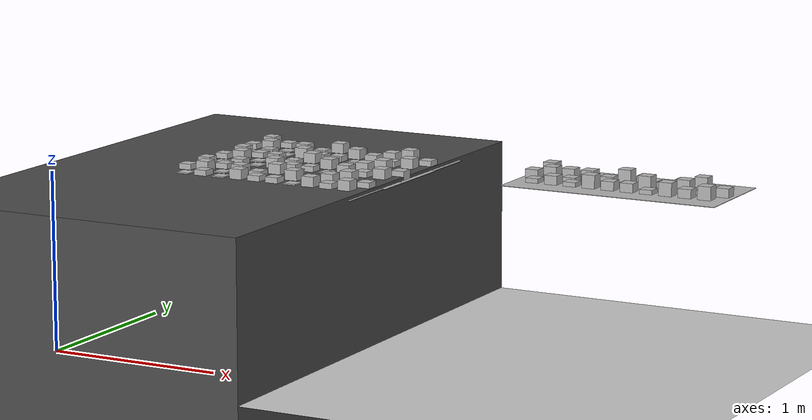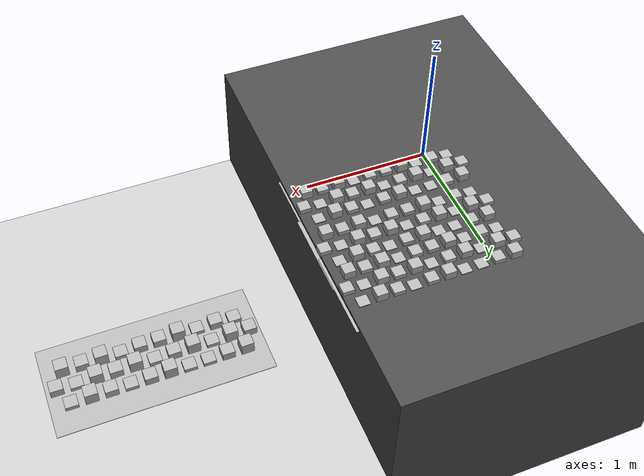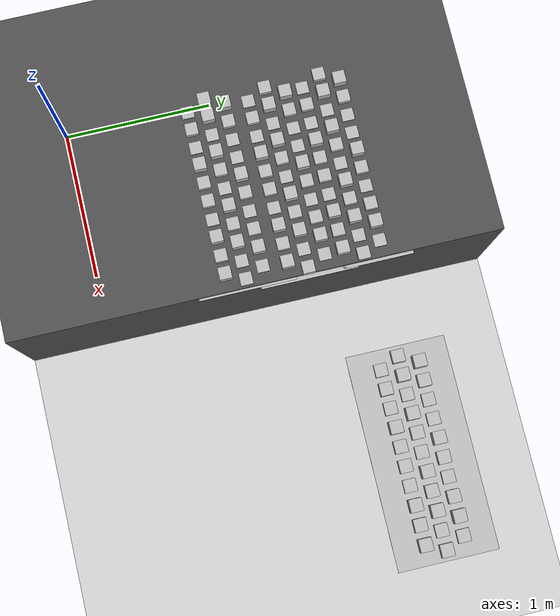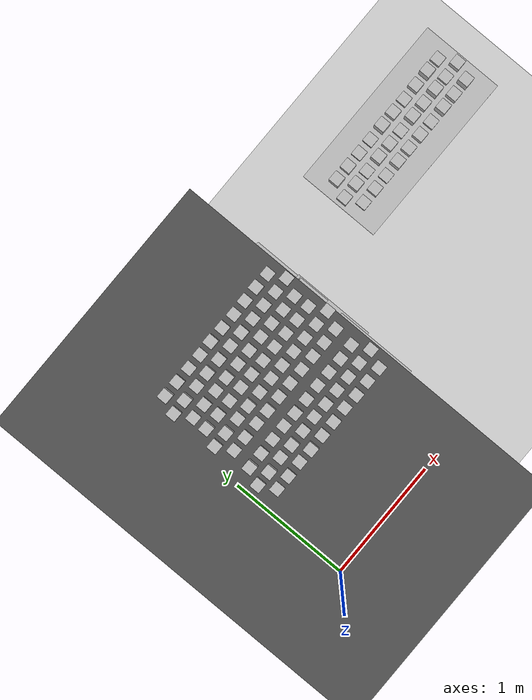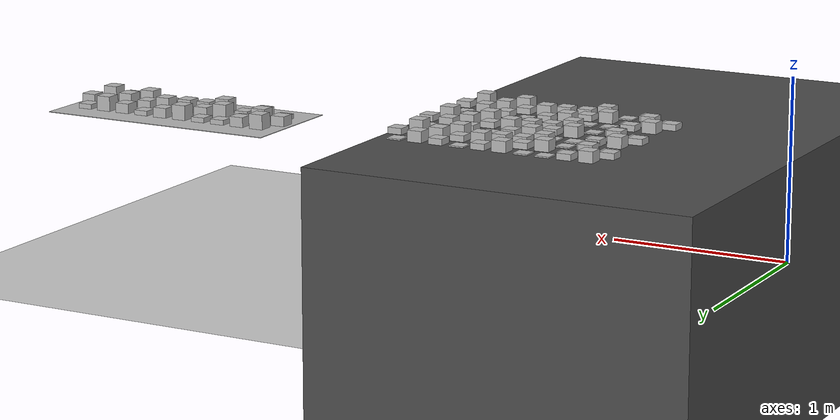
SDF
<sdf version="1.6">
 <world name="default">
  <model name="ground_plane">
   <static>1</static>
   <link name="link">
    <collision name="collision">
     <geometry><plane><normal>0 0 1</normal><size>100 100</size></plane></geometry>
     <surface><friction><ode><mu>100</mu><mu2>50</mu2></ode></friction></surface>
    </collision>
    <visual name="visual">
     <cast_shadows>0</cast_shadows>
     <geometry><plane><normal>0 0 1</normal><size>100 100</size></plane></geometry>
     <material>
      <script><uri>file://media/materials/scripts/gazebo.material</uri><name>Gazebo/Grey</name></script>
     </material>
    </visual>
   </link>
  </model>
  <model name="asphalt_plane">
   <static>1</static>
   <link name="link">
    <collision name="collision">
     <geometry><box><size>20 20 1.4296</size></box></geometry>
     <surface><friction><ode><mu>100</mu><mu2>50</mu2></ode></friction></surface>
    </collision>
    <visual name="visual">
     <cast_shadows>0</cast_shadows>
     <geometry><box><size>20 20 1.4296</size></box></geometry>
     <material>
      <script>
       <uri>model://asphalt_plane/materials/scripts</uri>
       <uri>model://asphalt_plane/materials/textures</uri>
       <name>vrc/asphalt</name>
      </script>
     </material>
    </visual>
   </link>
   <pose>-8.53833 2.29833 0.165376 0 -0 0</pose>
  </model>
  <model name="frc2016_roughterrain_1_clone_2">
   <static>0</static>
   <link name="link">
    <visual name="platform">
     <pose>0 0 0.08269 0 -0 0</pose>
     <geometry><box><size>1.27 0.5969 0.003175</size></box></geometry>
    </visual>
    <collision name="platform">
     <pose>0 0 0.08269 0 -0 0</pose>
     <geometry><box><size>1.27 0.5969 0.003175</size></box></geometry>
    </collision>
    <visual name="row1_block1_sm">
     <pose>0.51435 0.1143 0.09698 0 -0 0</pose>
     <geometry><box><size>0.0762 0.0762 0.0254</size></box></geometry>
    </visual>
    <collision name="row1_block1_sm">
     <pose>0.51435 0.1143 0.09698 0 -0 0</pose>
     <geometry><box><size>0.0762 0.0762 0.0254</size></box></geometry>
    </collision>
    <visual name="row1_block2_lg">
     <pose>0.40005 0.1143 0.12238 0 -0 0</pose>
     <geometry><box><size>0.0762 0.0762 0.0762</size></box></geometry>
    </visual>
    <collision name="row1_block2_lg">
     <pose>0.40005 0.1143 0.12238 0 -0 0</pose>
     <geometry><box><size>0.0762 0.0762 0.0762</size></box></geometry>
    </collision>
    <visual name="row1_block3_md">
     <pose>0.28575 0.1143 0.10968 0 -0 0</pose>
     <geometry><box><size>0.0762 0.0762 0.0508</size></box></geometry>
    </visual>
    <collision name="row1_block3_md">
     <pose>0.28575 0.1143 0.10968 0 -0 0</pose>
     <geometry><box><size>0.0762 0.0762 0.0508</size></box></geometry>
    </collision>
    <visual name="row1_block4_sm">
     <pose>0.17145 0.1143 0.09698 0 -0 0</pose>
     <geometry><box><size>0.0762 0.0762 0.0254</size></box></geometry>
    </visual>
    <collision name="row1_block4_sm">
     <pose>0.17145 0.1143 0.09698 0 -0 0</pose>
     <geometry><box><size>0.0762 0.0762 0.0254</size></box></geometry>
    </collision>
    <visual name="row1_block5_md">
     <pose>0.05715 0.1143 0.10968 0 -0 0</pose>
     <geometry><box><size>0.0762 0.0762 0.0508</size></box></geometry>
    </visual>
    <collision name="row1_block5_md">
     <pose>0.05715 0.1143 0.10968 0 -0 0</pose>
     <geometry><box><size>0.0762 0.0762 0.0508</size></box></geometry>
    </collision>
    <visual name="row1_block6_lg">
     <pose>-0.05715 0.1143 0.12238 0 -0 0</pose>
     <geometry><box><size>0.0762 0.0762 0.0762</size></box></geometry>
    </visual>
    <collision name="row1_block6_lg">
     <pose>-0.05715 0.1143 0.12238 0 -0 0</pose>
     <geometry><box><size>0.0762 0.0762 0.0762</size></box></geometry>
    </collision>
    <visual name="row1_block7_sm">
     <pose>-0.17145 0.1143 0.09698 0 -0 0</pose>
     <geometry><box><size>0.0762 0.0762 0.0254</size></box></geometry>
    </visual>
    <collision name="row1_block7_sm">
     <pose>-0.17145 0.1143 0.09698 0 -0 0</pose>
     <geometry><box><size>0.0762 0.0762 0.0254</size></box></geometry>
    </collision>
    <visual name="row1_block8_sm">
     <pose>-0.28575 0.1143 0.09698 0 -0 0</pose>
     <geometry><box><size>0.0762 0.0762 0.0254</size></box></geometry>
    </visual>
    <collision name="row1_block8_sm">
     <pose>-0.28575 0.1143 0.09698 0 -0 0</pose>
     <geometry><box><size>0.0762 0.0762 0.0254</size></box></geometry>
    </collision>
    <visual name="row1_block9_md">
     <pose>-0.40005 0.1143 0.10968 0 -0 0</pose>
     <geometry><box><size>0.0762 0.0762 0.0508</size></box></geometry>
    </visual>
    <collision name="row1_block9_md">
     <pose>-0.40005 0.1143 0.10968 0 -0 0</pose>
     <geometry><box><size>0.0762 0.0762 0.0508</size></box></geometry>
    </collision>
    <visual name="row1_block10_lg">
     <pose>-0.51435 0.1143 0.12238 0 -0 0</pose>
     <geometry><box><size>0.0762 0.0762 0.0762</size></box></geometry>
    </visual>
    <collision name="row1_block10_lg">
     <pose>-0.51435 0.1143 0.12238 0 -0 0</pose>
     <geometry><box><size>0.0762 0.0762 0.0762</size></box></geometry>
    </collision>
    <visual name="row2_block1_md">
     <pose>0.5715 0 0.10968 0 -0 0</pose>
     <geometry><box><size>0.0762 0.0762 0.0508</size></box></geometry>
    </visual>
    <collision name="row2_block1_md">
     <pose>0.5715 0 0.10968 0 -0 0</pose>
     <geometry><box><size>0.0762 0.0762 0.0508</size></box></geometry>
    </collision>
    <visual name="row2_block2_sm">
     <pose>0.4572 0 0.09698 0 -0 0</pose>
     <geometry><box><size>0.0762 0.0762 0.0254</size></box></geometry>
    </visual>
    <collision name="row2_block2_sm">
     <pose>0.4572 0 0.09698 0 -0 0</pose>
     <geometry><box><size>0.0762 0.0762 0.0254</size></box></geometry>
    </collision>
    <visual name="row2_block3_lg">
     <pose>0.3429 0 0.12238 0 -0 0</pose>
     <geometry><box><size>0.0762 0.0762 0.0762</size></box></geometry>
    </visual>
    <collision name="row2_block3_lg">
     <pose>0.3429 0 0.12238 0 -0 0</pose>
     <geometry><box><size>0.0762 0.0762 0.0762</size></box></geometry>
    </collision>
    <visual name="row2_block4_md">
     <pose>0.2286 0 0.10968 0 -0 0</pose>
     <geometry><box><size>0.0762 0.0762 0.0508</size></box></geometry>
    </visual>
    <collision name="row2_block4_md">
     <pose>0.2286 0 0.10968 0 -0 0</pose>
     <geometry><box><size>0.0762 0.0762 0.0508</size></box></geometry>
    </collision>
    <visual name="row2_block5_lg">
     <pose>0.1143 0 0.12238 0 -0 0</pose>
     <geometry><box><size>0.0762 0.0762 0.0762</size></box></geometry>
    </visual>
    <collision name="row2_block5_lg">
     <pose>0.1143 0 0.12238 0 -0 0</pose>
     <geometry><box><size>0.0762 0.0762 0.0762</size></box></geometry>
    </collision>
    <visual name="row2_block6_sm">
     <pose>0 0 0.09698 0 -0 0</pose>
     <geometry><box><size>0.0762 0.0762 0.0254</size></box></geometry>
    </visual>
    <collision name="row2_block6_sm">
     <pose>0 0 0.09698 0 -0 0</pose>
     <geometry><box><size>0.0762 0.0762 0.0254</size></box></geometry>
    </collision>
    <visual name="row2_block7_md">
     <pose>-0.1143 0 0.10968 0 -0 0</pose>
     <geometry><box><size>0.0762 0.0762 0.0508</size></box></geometry>
    </visual>
    <collision name="row2_block7_md">
     <pose>-0.1143 0 0.10968 0 -0 0</pose>
     <geometry><box><size>0.0762 0.0762 0.0508</size></box></geometry>
    </collision>
    <visual name="row2_block8_lg">
     <pose>-0.2286 0 0.12238 0 -0 0</pose>
     <geometry><box><size>0.0762 0.0762 0.0762</size></box></geometry>
    </visual>
    <collision name="row2_block8_lg">
     <pose>-0.2286 0 0.12238 0 -0 0</pose>
     <geometry><box><size>0.0762 0.0762 0.0762</size></box></geometry>
    </collision>
    <visual name="row2_block9_sm">
     <pose>-0.3429 0 0.09698 0 -0 0</pose>
     <geometry><box><size>0.0762 0.0762 0.0254</size></box></geometry>
    </visual>
    <collision name="row2_block9_sm">
     <pose>-0.3429 0 0.09698 0 -0 0</pose>
     <geometry><box><size>0.0762 0.0762 0.0254</size></box></geometry>
    </collision>
    <visual name="row2_block10_lg">
     <pose>-0.4572 0 0.12238 0 -0 0</pose>
     <geometry><box><size>0.0762 0.0762 0.0762</size></box></geometry>
    </visual>
    <collision name="row2_block10_lg">
     <pose>-0.4572 0 0.12238 0 -0 0</pose>
     <geometry><box><size>0.0762 0.0762 0.0762</size></box></geometry>
    </collision>
    <visual name="row2_block11_md">
     <pose>-0.5715 0 0.10968 0 -0 0</pose>
     <geometry><box><size>0.0762 0.0762 0.0508</size></box></geometry>
    </visual>
    <collision name="row2_block11_md">
     <pose>-0.5715 0 0.10968 0 -0 0</pose>
     <geometry><box><size>0.0762 0.0762 0.0508</size></box></geometry>
    </collision>
    <visual name="row3_block1_lg">
     <pose>0.51435 -0.1143 0.12238 0 -0 0</pose>
     <geometry><box><size>0.0762 0.0762 0.0762</size></box></geometry>
    </visual>
    <collision name="row3_block1_lg">
     <pose>0.51435 -0.1143 0.12238 0 -0 0</pose>
     <geometry><box><size>0.0762 0.0762 0.0762</size></box></geometry>
    </collision>
    <visual name="row3_block2_md">
     <pose>0.40005 -0.1143 0.10968 0 -0 0</pose>
     <geometry><box><size>0.0762 0.0762 0.0508</size></box></geometry>
    </visual>
    <collision name="row3_block2_md">
     <pose>0.40005 -0.1143 0.10968 0 -0 0</pose>
     <geometry><box><size>0.0762 0.0762 0.0508</size></box></geometry>
    </collision>
    <visual name="row3_block3_lg">
     <pose>0.28575 -0.1143 0.12238 0 -0 0</pose>
     <geometry><box><size>0.0762 0.0762 0.0762</size></box></geometry>
    </visual>
    <collision name="row3_block3_lg">
     <pose>0.28575 -0.1143 0.12238 0 -0 0</pose>
     <geometry><box><size>0.0762 0.0762 0.0762</size></box></geometry>
    </collision>
    <visual name="row3_block4_sm">
     <pose>0.17145 -0.1143 0.09698 0 -0 0</pose>
     <geometry><box><size>0.0762 0.0762 0.0254</size></box></geometry>
    </visual>
    <collision name="row3_block4_sm">
     <pose>0.17145 -0.1143 0.09698 0 -0 0</pose>
     <geometry><box><size>0.0762 0.0762 0.0254</size></box></geometry>
    </collision>
    <visual name="row3_block5_md">
     <pose>0.05715 -0.1143 0.10968 0 -0 0</pose>
     <geometry><box><size>0.0762 0.0762 0.0508</size></box></geometry>
    </visual>
    <collision name="row3_block5_md">
     <pose>0.05715 -0.1143 0.10968 0 -0 0</pose>
     <geometry><box><size>0.0762 0.0762 0.0508</size></box></geometry>
    </collision>
    <visual name="row3_block6_md">
     <pose>-0.05715 -0.1143 0.10968 0 -0 0</pose>
     <geometry><box><size>0.0762 0.0762 0.0508</size></box></geometry>
    </visual>
    <collision name="row3_block6_md">
     <pose>-0.05715 -0.1143 0.10968 0 -0 0</pose>
     <geometry><box><size>0.0762 0.0762 0.0508</size></box></geometry>
    </collision>
    <visual name="row3_block7_lg">
     <pose>-0.17145 -0.1143 0.12238 0 -0 0</pose>
     <geometry><box><size>0.0762 0.0762 0.0762</size></box></geometry>
    </visual>
    <collision name="row3_block7_lg">
     <pose>-0.17145 -0.1143 0.12238 0 -0 0</pose>
     <geometry><box><size>0.0762 0.0762 0.0762</size></box></geometry>
    </collision>
    <visual name="row3_block8_sm">
     <pose>-0.28575 -0.1143 0.09698 0 -0 0</pose>
     <geometry><box><size>0.0762 0.0762 0.0254</size></box></geometry>
    </visual>
    <collision name="row3_block8_sm">
     <pose>-0.28575 -0.1143 0.09698 0 -0 0</pose>
     <geometry><box><size>0.0762 0.0762 0.0254</size></box></geometry>
    </collision>
    <visual name="row3_block9_md">
     <pose>-0.40005 -0.1143 0.10968 0 -0 0</pose>
     <geometry><box><size>0.0762 0.0762 0.0508</size></box></geometry>
    </visual>
    <collision name="row3_block9_md">
     <pose>-0.40005 -0.1143 0.10968 0 -0 0</pose>
     <geometry><box><size>0.0762 0.0762 0.0508</size></box></geometry>
    </collision>
    <visual name="row3_block10_sm">
     <pose>-0.51435 -0.1143 0.09698 0 -0 0</pose>
     <geometry><box><size>0.0762 0.0762 0.0254</size></box></geometry>
    </visual>
    <collision name="row3_block10_sm">
     <pose>-0.51435 -0.1143 0.09698 0 -0 0</pose>
     <geometry><box><size>0.0762 0.0762 0.0254</size></box></geometry>
    </collision>
   </link>
   <pose>0.840762 0.950876 0.777128 0 -0 0</pose>
  </model>
  <model name="frc2016_roughterrain_1_clone_3">
   <static>0</static>
   <link name="link">
    <visual name="platform">
     <pose>0 0 0.08269 0 -0 0</pose>
     <geometry><box><size>1.27 0.5969 0.003175</size></box></geometry>
    </visual>
    <collision name="platform">
     <pose>0 0 0.08269 0 -0 0</pose>
     <geometry><box><size>1.27 0.5969 0.003175</size></box></geometry>
    </collision>
    <visual name="row1_block1_sm">
     <pose>0.51435 0.1143 0.09698 0 -0 0</pose>
     <geometry><box><size>0.0762 0.0762 0.0254</size></box></geometry>
    </visual>
    <collision name="row1_block1_sm">
     <pose>0.51435 0.1143 0.09698 0 -0 0</pose>
     <geometry><box><size>0.0762 0.0762 0.0254</size></box></geometry>
    </collision>
    <visual name="row1_block2_lg">
     <pose>0.40005 0.1143 0.12238 0 -0 0</pose>
     <geometry><box><size>0.0762 0.0762 0.0762</size></box></geometry>
    </visual>
    <collision name="row1_block2_lg">
     <pose>0.40005 0.1143 0.12238 0 -0 0</pose>
     <geometry><box><size>0.0762 0.0762 0.0762</size></box></geometry>
    </collision>
    <visual name="row1_block3_md">
     <pose>0.28575 0.1143 0.10968 0 -0 0</pose>
     <geometry><box><size>0.0762 0.0762 0.0508</size></box></geometry>
    </visual>
    <collision name="row1_block3_md">
     <pose>0.28575 0.1143 0.10968 0 -0 0</pose>
     <geometry><box><size>0.0762 0.0762 0.0508</size></box></geometry>
    </collision>
    <visual name="row1_block4_sm">
     <pose>0.17145 0.1143 0.09698 0 -0 0</pose>
     <geometry><box><size>0.0762 0.0762 0.0254</size></box></geometry>
    </visual>
    <collision name="row1_block4_sm">
     <pose>0.17145 0.1143 0.09698 0 -0 0</pose>
     <geometry><box><size>0.0762 0.0762 0.0254</size></box></geometry>
    </collision>
    <visual name="row1_block5_md">
     <pose>0.05715 0.1143 0.10968 0 -0 0</pose>
     <geometry><box><size>0.0762 0.0762 0.0508</size></box></geometry>
    </visual>
    <collision name="row1_block5_md">
     <pose>0.05715 0.1143 0.10968 0 -0 0</pose>
     <geometry><box><size>0.0762 0.0762 0.0508</size></box></geometry>
    </collision>
    <visual name="row1_block6_lg">
     <pose>-0.05715 0.1143 0.12238 0 -0 0</pose>
     <geometry><box><size>0.0762 0.0762 0.0762</size></box></geometry>
    </visual>
    <collision name="row1_block6_lg">
     <pose>-0.05715 0.1143 0.12238 0 -0 0</pose>
     <geometry><box><size>0.0762 0.0762 0.0762</size></box></geometry>
    </collision>
    <visual name="row1_block7_sm">
     <pose>-0.17145 0.1143 0.09698 0 -0 0</pose>
     <geometry><box><size>0.0762 0.0762 0.0254</size></box></geometry>
    </visual>
    <collision name="row1_block7_sm">
     <pose>-0.17145 0.1143 0.09698 0 -0 0</pose>
     <geometry><box><size>0.0762 0.0762 0.0254</size></box></geometry>
    </collision>
    <visual name="row1_block8_sm">
     <pose>-0.28575 0.1143 0.09698 0 -0 0</pose>
     <geometry><box><size>0.0762 0.0762 0.0254</size></box></geometry>
    </visual>
    <collision name="row1_block8_sm">
     <pose>-0.28575 0.1143 0.09698 0 -0 0</pose>
     <geometry><box><size>0.0762 0.0762 0.0254</size></box></geometry>
    </collision>
    <visual name="row1_block9_md">
     <pose>-0.40005 0.1143 0.10968 0 -0 0</pose>
     <geometry><box><size>0.0762 0.0762 0.0508</size></box></geometry>
    </visual>
    <collision name="row1_block9_md">
     <pose>-0.40005 0.1143 0.10968 0 -0 0</pose>
     <geometry><box><size>0.0762 0.0762 0.0508</size></box></geometry>
    </collision>
    <visual name="row1_block10_lg">
     <pose>-0.51435 0.1143 0.12238 0 -0 0</pose>
     <geometry><box><size>0.0762 0.0762 0.0762</size></box></geometry>
    </visual>
    <collision name="row1_block10_lg">
     <pose>-0.51435 0.1143 0.12238 0 -0 0</pose>
     <geometry><box><size>0.0762 0.0762 0.0762</size></box></geometry>
    </collision>
    <visual name="row2_block1_md">
     <pose>0.5715 0 0.10968 0 -0 0</pose>
     <geometry><box><size>0.0762 0.0762 0.0508</size></box></geometry>
    </visual>
    <collision name="row2_block1_md">
     <pose>0.5715 0 0.10968 0 -0 0</pose>
     <geometry><box><size>0.0762 0.0762 0.0508</size></box></geometry>
    </collision>
    <visual name="row2_block2_sm">
     <pose>0.4572 0 0.09698 0 -0 0</pose>
     <geometry><box><size>0.0762 0.0762 0.0254</size></box></geometry>
    </visual>
    <collision name="row2_block2_sm">
     <pose>0.4572 0 0.09698 0 -0 0</pose>
     <geometry><box><size>0.0762 0.0762 0.0254</size></box></geometry>
    </collision>
    <visual name="row2_block3_lg">
     <pose>0.3429 0 0.12238 0 -0 0</pose>
     <geometry><box><size>0.0762 0.0762 0.0762</size></box></geometry>
    </visual>
    <collision name="row2_block3_lg">
     <pose>0.3429 0 0.12238 0 -0 0</pose>
     <geometry><box><size>0.0762 0.0762 0.0762</size></box></geometry>
    </collision>
    <visual name="row2_block4_md">
     <pose>0.2286 0 0.10968 0 -0 0</pose>
     <geometry><box><size>0.0762 0.0762 0.0508</size></box></geometry>
    </visual>
    <collision name="row2_block4_md">
     <pose>0.2286 0 0.10968 0 -0 0</pose>
     <geometry><box><size>0.0762 0.0762 0.0508</size></box></geometry>
    </collision>
    <visual name="row2_block5_lg">
     <pose>0.1143 0 0.12238 0 -0 0</pose>
     <geometry><box><size>0.0762 0.0762 0.0762</size></box></geometry>
    </visual>
    <collision name="row2_block5_lg">
     <pose>0.1143 0 0.12238 0 -0 0</pose>
     <geometry><box><size>0.0762 0.0762 0.0762</size></box></geometry>
    </collision>
    <visual name="row2_block6_sm">
     <pose>0 0 0.09698 0 -0 0</pose>
     <geometry><box><size>0.0762 0.0762 0.0254</size></box></geometry>
    </visual>
    <collision name="row2_block6_sm">
     <pose>0 0 0.09698 0 -0 0</pose>
     <geometry><box><size>0.0762 0.0762 0.0254</size></box></geometry>
    </collision>
    <visual name="row2_block7_md">
     <pose>-0.1143 0 0.10968 0 -0 0</pose>
     <geometry><box><size>0.0762 0.0762 0.0508</size></box></geometry>
    </visual>
    <collision name="row2_block7_md">
     <pose>-0.1143 0 0.10968 0 -0 0</pose>
     <geometry><box><size>0.0762 0.0762 0.0508</size></box></geometry>
    </collision>
    <visual name="row2_block8_lg">
     <pose>-0.2286 0 0.12238 0 -0 0</pose>
     <geometry><box><size>0.0762 0.0762 0.0762</size></box></geometry>
    </visual>
    <collision name="row2_block8_lg">
     <pose>-0.2286 0 0.12238 0 -0 0</pose>
     <geometry><box><size>0.0762 0.0762 0.0762</size></box></geometry>
    </collision>
    <visual name="row2_block9_sm">
     <pose>-0.3429 0 0.09698 0 -0 0</pose>
     <geometry><box><size>0.0762 0.0762 0.0254</size></box></geometry>
    </visual>
    <collision name="row2_block9_sm">
     <pose>-0.3429 0 0.09698 0 -0 0</pose>
     <geometry><box><size>0.0762 0.0762 0.0254</size></box></geometry>
    </collision>
    <visual name="row2_block10_lg">
     <pose>-0.4572 0 0.12238 0 -0 0</pose>
     <geometry><box><size>0.0762 0.0762 0.0762</size></box></geometry>
    </visual>
    <collision name="row2_block10_lg">
     <pose>-0.4572 0 0.12238 0 -0 0</pose>
     <geometry><box><size>0.0762 0.0762 0.0762</size></box></geometry>
    </collision>
    <visual name="row2_block11_md">
     <pose>-0.5715 0 0.10968 0 -0 0</pose>
     <geometry><box><size>0.0762 0.0762 0.0508</size></box></geometry>
    </visual>
    <collision name="row2_block11_md">
     <pose>-0.5715 0 0.10968 0 -0 0</pose>
     <geometry><box><size>0.0762 0.0762 0.0508</size></box></geometry>
    </collision>
    <visual name="row3_block1_lg">
     <pose>0.51435 -0.1143 0.12238 0 -0 0</pose>
     <geometry><box><size>0.0762 0.0762 0.0762</size></box></geometry>
    </visual>
    <collision name="row3_block1_lg">
     <pose>0.51435 -0.1143 0.12238 0 -0 0</pose>
     <geometry><box><size>0.0762 0.0762 0.0762</size></box></geometry>
    </collision>
    <visual name="row3_block2_md">
     <pose>0.40005 -0.1143 0.10968 0 -0 0</pose>
     <geometry><box><size>0.0762 0.0762 0.0508</size></box></geometry>
    </visual>
    <collision name="row3_block2_md">
     <pose>0.40005 -0.1143 0.10968 0 -0 0</pose>
     <geometry><box><size>0.0762 0.0762 0.0508</size></box></geometry>
    </collision>
    <visual name="row3_block3_lg">
     <pose>0.28575 -0.1143 0.12238 0 -0 0</pose>
     <geometry><box><size>0.0762 0.0762 0.0762</size></box></geometry>
    </visual>
    <collision name="row3_block3_lg">
     <pose>0.28575 -0.1143 0.12238 0 -0 0</pose>
     <geometry><box><size>0.0762 0.0762 0.0762</size></box></geometry>
    </collision>
    <visual name="row3_block4_sm">
     <pose>0.17145 -0.1143 0.09698 0 -0 0</pose>
     <geometry><box><size>0.0762 0.0762 0.0254</size></box></geometry>
    </visual>
    <collision name="row3_block4_sm">
     <pose>0.17145 -0.1143 0.09698 0 -0 0</pose>
     <geometry><box><size>0.0762 0.0762 0.0254</size></box></geometry>
    </collision>
    <visual name="row3_block5_md">
     <pose>0.05715 -0.1143 0.10968 0 -0 0</pose>
     <geometry><box><size>0.0762 0.0762 0.0508</size></box></geometry>
    </visual>
    <collision name="row3_block5_md">
     <pose>0.05715 -0.1143 0.10968 0 -0 0</pose>
     <geometry><box><size>0.0762 0.0762 0.0508</size></box></geometry>
    </collision>
    <visual name="row3_block6_md">
     <pose>-0.05715 -0.1143 0.10968 0 -0 0</pose>
     <geometry><box><size>0.0762 0.0762 0.0508</size></box></geometry>
    </visual>
    <collision name="row3_block6_md">
     <pose>-0.05715 -0.1143 0.10968 0 -0 0</pose>
     <geometry><box><size>0.0762 0.0762 0.0508</size></box></geometry>
    </collision>
    <visual name="row3_block7_lg">
     <pose>-0.17145 -0.1143 0.12238 0 -0 0</pose>
     <geometry><box><size>0.0762 0.0762 0.0762</size></box></geometry>
    </visual>
    <collision name="row3_block7_lg">
     <pose>-0.17145 -0.1143 0.12238 0 -0 0</pose>
     <geometry><box><size>0.0762 0.0762 0.0762</size></box></geometry>
    </collision>
    <visual name="row3_block8_sm">
     <pose>-0.28575 -0.1143 0.09698 0 -0 0</pose>
     <geometry><box><size>0.0762 0.0762 0.0254</size></box></geometry>
    </visual>
    <collision name="row3_block8_sm">
     <pose>-0.28575 -0.1143 0.09698 0 -0 0</pose>
     <geometry><box><size>0.0762 0.0762 0.0254</size></box></geometry>
    </collision>
    <visual name="row3_block9_md">
     <pose>-0.40005 -0.1143 0.10968 0 -0 0</pose>
     <geometry><box><size>0.0762 0.0762 0.0508</size></box></geometry>
    </visual>
    <collision name="row3_block9_md">
     <pose>-0.40005 -0.1143 0.10968 0 -0 0</pose>
     <geometry><box><size>0.0762 0.0762 0.0508</size></box></geometry>
    </collision>
    <visual name="row3_block10_sm">
     <pose>-0.51435 -0.1143 0.09698 0 -0 0</pose>
     <geometry><box><size>0.0762 0.0762 0.0254</size></box></geometry>
    </visual>
    <collision name="row3_block10_sm">
     <pose>-0.51435 -0.1143 0.09698 0 -0 0</pose>
     <geometry><box><size>0.0762 0.0762 0.0254</size></box></geometry>
    </collision>
   </link>
   <pose>0.854046 1.3265 0.777128 0 -0 0</pose>
  </model>
  <model name="frc2016_roughterrain_1_clone_11_clone_1">
   <static>0</static>
   <link name="link">
    <visual name="platform">
     <pose>0 0 0.08269 0 -0 0</pose>
     <geometry><box><size>1.27 0.5969 0.003175</size></box></geometry>
    </visual>
    <collision name="platform">
     <pose>0 0 0.08269 0 -0 0</pose>
     <geometry><box><size>1.27 0.5969 0.003175</size></box></geometry>
    </collision>
    <visual name="row1_block1_sm">
     <pose>0.51435 0.1143 0.09698 0 -0 0</pose>
     <geometry><box><size>0.0762 0.0762 0.0254</size></box></geometry>
    </visual>
    <collision name="row1_block1_sm">
     <pose>0.51435 0.1143 0.09698 0 -0 0</pose>
     <geometry><box><size>0.0762 0.0762 0.0254</size></box></geometry>
    </collision>
    <visual name="row1_block2_lg">
     <pose>0.40005 0.1143 0.12238 0 -0 0</pose>
     <geometry><box><size>0.0762 0.0762 0.0762</size></box></geometry>
    </visual>
    <collision name="row1_block2_lg">
     <pose>0.40005 0.1143 0.12238 0 -0 0</pose>
     <geometry><box><size>0.0762 0.0762 0.0762</size></box></geometry>
    </collision>
    <visual name="row1_block3_md">
     <pose>0.28575 0.1143 0.10968 0 -0 0</pose>
     <geometry><box><size>0.0762 0.0762 0.0508</size></box></geometry>
    </visual>
    <collision name="row1_block3_md">
     <pose>0.28575 0.1143 0.10968 0 -0 0</pose>
     <geometry><box><size>0.0762 0.0762 0.0508</size></box></geometry>
    </collision>
    <visual name="row1_block4_sm">
     <pose>0.17145 0.1143 0.09698 0 -0 0</pose>
     <geometry><box><size>0.0762 0.0762 0.0254</size></box></geometry>
    </visual>
    <collision name="row1_block4_sm">
     <pose>0.17145 0.1143 0.09698 0 -0 0</pose>
     <geometry><box><size>0.0762 0.0762 0.0254</size></box></geometry>
    </collision>
    <visual name="row1_block5_md">
     <pose>0.05715 0.1143 0.10968 0 -0 0</pose>
     <geometry><box><size>0.0762 0.0762 0.0508</size></box></geometry>
    </visual>
    <collision name="row1_block5_md">
     <pose>0.05715 0.1143 0.10968 0 -0 0</pose>
     <geometry><box><size>0.0762 0.0762 0.0508</size></box></geometry>
    </collision>
    <visual name="row1_block6_lg">
     <pose>-0.05715 0.1143 0.12238 0 -0 0</pose>
     <geometry><box><size>0.0762 0.0762 0.0762</size></box></geometry>
    </visual>
    <collision name="row1_block6_lg">
     <pose>-0.05715 0.1143 0.12238 0 -0 0</pose>
     <geometry><box><size>0.0762 0.0762 0.0762</size></box></geometry>
    </collision>
    <visual name="row1_block7_sm">
     <pose>-0.17145 0.1143 0.09698 0 -0 0</pose>
     <geometry><box><size>0.0762 0.0762 0.0254</size></box></geometry>
    </visual>
    <collision name="row1_block7_sm">
     <pose>-0.17145 0.1143 0.09698 0 -0 0</pose>
     <geometry><box><size>0.0762 0.0762 0.0254</size></box></geometry>
    </collision>
    <visual name="row1_block8_sm">
     <pose>-0.28575 0.1143 0.09698 0 -0 0</pose>
     <geometry><box><size>0.0762 0.0762 0.0254</size></box></geometry>
    </visual>
    <collision name="row1_block8_sm">
     <pose>-0.28575 0.1143 0.09698 0 -0 0</pose>
     <geometry><box><size>0.0762 0.0762 0.0254</size></box></geometry>
    </collision>
    <visual name="row1_block9_md">
     <pose>-0.40005 0.1143 0.10968 0 -0 0</pose>
     <geometry><box><size>0.0762 0.0762 0.0508</size></box></geometry>
    </visual>
    <collision name="row1_block9_md">
     <pose>-0.40005 0.1143 0.10968 0 -0 0</pose>
     <geometry><box><size>0.0762 0.0762 0.0508</size></box></geometry>
    </collision>
    <visual name="row1_block10_lg">
     <pose>-0.51435 0.1143 0.12238 0 -0 0</pose>
     <geometry><box><size>0.0762 0.0762 0.0762</size></box></geometry>
    </visual>
    <collision name="row1_block10_lg">
     <pose>-0.51435 0.1143 0.12238 0 -0 0</pose>
     <geometry><box><size>0.0762 0.0762 0.0762</size></box></geometry>
    </collision>
    <visual name="row2_block1_md">
     <pose>0.5715 0 0.10968 0 -0 0</pose>
     <geometry><box><size>0.0762 0.0762 0.0508</size></box></geometry>
    </visual>
    <collision name="row2_block1_md">
     <pose>0.5715 0 0.10968 0 -0 0</pose>
     <geometry><box><size>0.0762 0.0762 0.0508</size></box></geometry>
    </collision>
    <visual name="row2_block2_sm">
     <pose>0.4572 0 0.09698 0 -0 0</pose>
     <geometry><box><size>0.0762 0.0762 0.0254</size></box></geometry>
    </visual>
    <collision name="row2_block2_sm">
     <pose>0.4572 0 0.09698 0 -0 0</pose>
     <geometry><box><size>0.0762 0.0762 0.0254</size></box></geometry>
    </collision>
    <visual name="row2_block3_lg">
     <pose>0.3429 0 0.12238 0 -0 0</pose>
     <geometry><box><size>0.0762 0.0762 0.0762</size></box></geometry>
    </visual>
    <collision name="row2_block3_lg">
     <pose>0.3429 0 0.12238 0 -0 0</pose>
     <geometry><box><size>0.0762 0.0762 0.0762</size></box></geometry>
    </collision>
    <visual name="row2_block4_md">
     <pose>0.2286 0 0.10968 0 -0 0</pose>
     <geometry><box><size>0.0762 0.0762 0.0508</size></box></geometry>
    </visual>
    <collision name="row2_block4_md">
     <pose>0.2286 0 0.10968 0 -0 0</pose>
     <geometry><box><size>0.0762 0.0762 0.0508</size></box></geometry>
    </collision>
    <visual name="row2_block5_lg">
     <pose>0.1143 0 0.12238 0 -0 0</pose>
     <geometry><box><size>0.0762 0.0762 0.0762</size></box></geometry>
    </visual>
    <collision name="row2_block5_lg">
     <pose>0.1143 0 0.12238 0 -0 0</pose>
     <geometry><box><size>0.0762 0.0762 0.0762</size></box></geometry>
    </collision>
    <visual name="row2_block6_sm">
     <pose>0 0 0.09698 0 -0 0</pose>
     <geometry><box><size>0.0762 0.0762 0.0254</size></box></geometry>
    </visual>
    <collision name="row2_block6_sm">
     <pose>0 0 0.09698 0 -0 0</pose>
     <geometry><box><size>0.0762 0.0762 0.0254</size></box></geometry>
    </collision>
    <visual name="row2_block7_md">
     <pose>-0.1143 0 0.10968 0 -0 0</pose>
     <geometry><box><size>0.0762 0.0762 0.0508</size></box></geometry>
    </visual>
    <collision name="row2_block7_md">
     <pose>-0.1143 0 0.10968 0 -0 0</pose>
     <geometry><box><size>0.0762 0.0762 0.0508</size></box></geometry>
    </collision>
    <visual name="row2_block8_lg">
     <pose>-0.2286 0 0.12238 0 -0 0</pose>
     <geometry><box><size>0.0762 0.0762 0.0762</size></box></geometry>
    </visual>
    <collision name="row2_block8_lg">
     <pose>-0.2286 0 0.12238 0 -0 0</pose>
     <geometry><box><size>0.0762 0.0762 0.0762</size></box></geometry>
    </collision>
    <visual name="row2_block9_sm">
     <pose>-0.3429 0 0.09698 0 -0 0</pose>
     <geometry><box><size>0.0762 0.0762 0.0254</size></box></geometry>
    </visual>
    <collision name="row2_block9_sm">
     <pose>-0.3429 0 0.09698 0 -0 0</pose>
     <geometry><box><size>0.0762 0.0762 0.0254</size></box></geometry>
    </collision>
    <visual name="row2_block10_lg">
     <pose>-0.4572 0 0.12238 0 -0 0</pose>
     <geometry><box><size>0.0762 0.0762 0.0762</size></box></geometry>
    </visual>
    <collision name="row2_block10_lg">
     <pose>-0.4572 0 0.12238 0 -0 0</pose>
     <geometry><box><size>0.0762 0.0762 0.0762</size></box></geometry>
    </collision>
    <visual name="row2_block11_md">
     <pose>-0.5715 0 0.10968 0 -0 0</pose>
     <geometry><box><size>0.0762 0.0762 0.0508</size></box></geometry>
    </visual>
    <collision name="row2_block11_md">
     <pose>-0.5715 0 0.10968 0 -0 0</pose>
     <geometry><box><size>0.0762 0.0762 0.0508</size></box></geometry>
    </collision>
    <visual name="row3_block1_lg">
     <pose>0.51435 -0.1143 0.12238 0 -0 0</pose>
     <geometry><box><size>0.0762 0.0762 0.0762</size></box></geometry>
    </visual>
    <collision name="row3_block1_lg">
     <pose>0.51435 -0.1143 0.12238 0 -0 0</pose>
     <geometry><box><size>0.0762 0.0762 0.0762</size></box></geometry>
    </collision>
    <visual name="row3_block2_md">
     <pose>0.40005 -0.1143 0.10968 0 -0 0</pose>
     <geometry><box><size>0.0762 0.0762 0.0508</size></box></geometry>
    </visual>
    <collision name="row3_block2_md">
     <pose>0.40005 -0.1143 0.10968 0 -0 0</pose>
     <geometry><box><size>0.0762 0.0762 0.0508</size></box></geometry>
    </collision>
    <visual name="row3_block3_lg">
     <pose>0.28575 -0.1143 0.12238 0 -0 0</pose>
     <geometry><box><size>0.0762 0.0762 0.0762</size></box></geometry>
    </visual>
    <collision name="row3_block3_lg">
     <pose>0.28575 -0.1143 0.12238 0 -0 0</pose>
     <geometry><box><size>0.0762 0.0762 0.0762</size></box></geometry>
    </collision>
    <visual name="row3_block4_sm">
     <pose>0.17145 -0.1143 0.09698 0 -0 0</pose>
     <geometry><box><size>0.0762 0.0762 0.0254</size></box></geometry>
    </visual>
    <collision name="row3_block4_sm">
     <pose>0.17145 -0.1143 0.09698 0 -0 0</pose>
     <geometry><box><size>0.0762 0.0762 0.0254</size></box></geometry>
    </collision>
    <visual name="row3_block5_md">
     <pose>0.05715 -0.1143 0.10968 0 -0 0</pose>
     <geometry><box><size>0.0762 0.0762 0.0508</size></box></geometry>
    </visual>
    <collision name="row3_block5_md">
     <pose>0.05715 -0.1143 0.10968 0 -0 0</pose>
     <geometry><box><size>0.0762 0.0762 0.0508</size></box></geometry>
    </collision>
    <visual name="row3_block6_md">
     <pose>-0.05715 -0.1143 0.10968 0 -0 0</pose>
     <geometry><box><size>0.0762 0.0762 0.0508</size></box></geometry>
    </visual>
    <collision name="row3_block6_md">
     <pose>-0.05715 -0.1143 0.10968 0 -0 0</pose>
     <geometry><box><size>0.0762 0.0762 0.0508</size></box></geometry>
    </collision>
    <visual name="row3_block7_lg">
     <pose>-0.17145 -0.1143 0.12238 0 -0 0</pose>
     <geometry><box><size>0.0762 0.0762 0.0762</size></box></geometry>
    </visual>
    <collision name="row3_block7_lg">
     <pose>-0.17145 -0.1143 0.12238 0 -0 0</pose>
     <geometry><box><size>0.0762 0.0762 0.0762</size></box></geometry>
    </collision>
    <visual name="row3_block8_sm">
     <pose>-0.28575 -0.1143 0.09698 0 -0 0</pose>
     <geometry><box><size>0.0762 0.0762 0.0254</size></box></geometry>
    </visual>
    <collision name="row3_block8_sm">
     <pose>-0.28575 -0.1143 0.09698 0 -0 0</pose>
     <geometry><box><size>0.0762 0.0762 0.0254</size></box></geometry>
    </collision>
    <visual name="row3_block9_md">
     <pose>-0.40005 -0.1143 0.10968 0 -0 0</pose>
     <geometry><box><size>0.0762 0.0762 0.0508</size></box></geometry>
    </visual>
    <collision name="row3_block9_md">
     <pose>-0.40005 -0.1143 0.10968 0 -0 0</pose>
     <geometry><box><size>0.0762 0.0762 0.0508</size></box></geometry>
    </collision>
    <visual name="row3_block10_sm">
     <pose>-0.51435 -0.1143 0.09698 0 -0 0</pose>
     <geometry><box><size>0.0762 0.0762 0.0254</size></box></geometry>
    </visual>
    <collision name="row3_block10_sm">
     <pose>-0.51435 -0.1143 0.09698 0 -0 0</pose>
     <geometry><box><size>0.0762 0.0762 0.0254</size></box></geometry>
    </collision>
   </link>
   <pose>0.846446 1.66634 0.777128 0 -0 0</pose>
  </model>
  <model name="frc2016_roughterrain_1_clone_11_clone_4">
   <static>0</static>
   <link name="link">
    <visual name="platform">
     <pose>0 0 0.08269 0 -0 0</pose>
     <geometry><box><size>1.27 0.5969 0.003175</size></box></geometry>
    </visual>
    <collision name="platform">
     <pose>0 0 0.08269 0 -0 0</pose>
     <geometry><box><size>1.27 0.5969 0.003175</size></box></geometry>
    </collision>
    <visual name="row1_block1_sm">
     <pose>0.51435 0.1143 0.09698 0 -0 0</pose>
     <geometry><box><size>0.0762 0.0762 0.0254</size></box></geometry>
    </visual>
    <collision name="row1_block1_sm">
     <pose>0.51435 0.1143 0.09698 0 -0 0</pose>
     <geometry><box><size>0.0762 0.0762 0.0254</size></box></geometry>
    </collision>
    <visual name="row1_block2_lg">
     <pose>0.40005 0.1143 0.12238 0 -0 0</pose>
     <geometry><box><size>0.0762 0.0762 0.0762</size></box></geometry>
    </visual>
    <collision name="row1_block2_lg">
     <pose>0.40005 0.1143 0.12238 0 -0 0</pose>
     <geometry><box><size>0.0762 0.0762 0.0762</size></box></geometry>
    </collision>
    <visual name="row1_block3_md">
     <pose>0.28575 0.1143 0.10968 0 -0 0</pose>
     <geometry><box><size>0.0762 0.0762 0.0508</size></box></geometry>
    </visual>
    <collision name="row1_block3_md">
     <pose>0.28575 0.1143 0.10968 0 -0 0</pose>
     <geometry><box><size>0.0762 0.0762 0.0508</size></box></geometry>
    </collision>
    <visual name="row1_block4_sm">
     <pose>0.17145 0.1143 0.09698 0 -0 0</pose>
     <geometry><box><size>0.0762 0.0762 0.0254</size></box></geometry>
    </visual>
    <collision name="row1_block4_sm">
     <pose>0.17145 0.1143 0.09698 0 -0 0</pose>
     <geometry><box><size>0.0762 0.0762 0.0254</size></box></geometry>
    </collision>
    <visual name="row1_block5_md">
     <pose>0.05715 0.1143 0.10968 0 -0 0</pose>
     <geometry><box><size>0.0762 0.0762 0.0508</size></box></geometry>
    </visual>
    <collision name="row1_block5_md">
     <pose>0.05715 0.1143 0.10968 0 -0 0</pose>
     <geometry><box><size>0.0762 0.0762 0.0508</size></box></geometry>
    </collision>
    <visual name="row1_block6_lg">
     <pose>-0.05715 0.1143 0.12238 0 -0 0</pose>
     <geometry><box><size>0.0762 0.0762 0.0762</size></box></geometry>
    </visual>
    <collision name="row1_block6_lg">
     <pose>-0.05715 0.1143 0.12238 0 -0 0</pose>
     <geometry><box><size>0.0762 0.0762 0.0762</size></box></geometry>
    </collision>
    <visual name="row1_block7_sm">
     <pose>-0.17145 0.1143 0.09698 0 -0 0</pose>
     <geometry><box><size>0.0762 0.0762 0.0254</size></box></geometry>
    </visual>
    <collision name="row1_block7_sm">
     <pose>-0.17145 0.1143 0.09698 0 -0 0</pose>
     <geometry><box><size>0.0762 0.0762 0.0254</size></box></geometry>
    </collision>
    <visual name="row1_block8_sm">
     <pose>-0.28575 0.1143 0.09698 0 -0 0</pose>
     <geometry><box><size>0.0762 0.0762 0.0254</size></box></geometry>
    </visual>
    <collision name="row1_block8_sm">
     <pose>-0.28575 0.1143 0.09698 0 -0 0</pose>
     <geometry><box><size>0.0762 0.0762 0.0254</size></box></geometry>
    </collision>
    <visual name="row1_block9_md">
     <pose>-0.40005 0.1143 0.10968 0 -0 0</pose>
     <geometry><box><size>0.0762 0.0762 0.0508</size></box></geometry>
    </visual>
    <collision name="row1_block9_md">
     <pose>-0.40005 0.1143 0.10968 0 -0 0</pose>
     <geometry><box><size>0.0762 0.0762 0.0508</size></box></geometry>
    </collision>
    <visual name="row1_block10_lg">
     <pose>-0.51435 0.1143 0.12238 0 -0 0</pose>
     <geometry><box><size>0.0762 0.0762 0.0762</size></box></geometry>
    </visual>
    <collision name="row1_block10_lg">
     <pose>-0.51435 0.1143 0.12238 0 -0 0</pose>
     <geometry><box><size>0.0762 0.0762 0.0762</size></box></geometry>
    </collision>
    <visual name="row2_block1_md">
     <pose>0.5715 0 0.10968 0 -0 0</pose>
     <geometry><box><size>0.0762 0.0762 0.0508</size></box></geometry>
    </visual>
    <collision name="row2_block1_md">
     <pose>0.5715 0 0.10968 0 -0 0</pose>
     <geometry><box><size>0.0762 0.0762 0.0508</size></box></geometry>
    </collision>
    <visual name="row2_block2_sm">
     <pose>0.4572 0 0.09698 0 -0 0</pose>
     <geometry><box><size>0.0762 0.0762 0.0254</size></box></geometry>
    </visual>
    <collision name="row2_block2_sm">
     <pose>0.4572 0 0.09698 0 -0 0</pose>
     <geometry><box><size>0.0762 0.0762 0.0254</size></box></geometry>
    </collision>
    <visual name="row2_block3_lg">
     <pose>0.3429 0 0.12238 0 -0 0</pose>
     <geometry><box><size>0.0762 0.0762 0.0762</size></box></geometry>
    </visual>
    <collision name="row2_block3_lg">
     <pose>0.3429 0 0.12238 0 -0 0</pose>
     <geometry><box><size>0.0762 0.0762 0.0762</size></box></geometry>
    </collision>
    <visual name="row2_block4_md">
     <pose>0.2286 0 0.10968 0 -0 0</pose>
     <geometry><box><size>0.0762 0.0762 0.0508</size></box></geometry>
    </visual>
    <collision name="row2_block4_md">
     <pose>0.2286 0 0.10968 0 -0 0</pose>
     <geometry><box><size>0.0762 0.0762 0.0508</size></box></geometry>
    </collision>
    <visual name="row2_block5_lg">
     <pose>0.1143 0 0.12238 0 -0 0</pose>
     <geometry><box><size>0.0762 0.0762 0.0762</size></box></geometry>
    </visual>
    <collision name="row2_block5_lg">
     <pose>0.1143 0 0.12238 0 -0 0</pose>
     <geometry><box><size>0.0762 0.0762 0.0762</size></box></geometry>
    </collision>
    <visual name="row2_block6_sm">
     <pose>0 0 0.09698 0 -0 0</pose>
     <geometry><box><size>0.0762 0.0762 0.0254</size></box></geometry>
    </visual>
    <collision name="row2_block6_sm">
     <pose>0 0 0.09698 0 -0 0</pose>
     <geometry><box><size>0.0762 0.0762 0.0254</size></box></geometry>
    </collision>
    <visual name="row2_block7_md">
     <pose>-0.1143 0 0.10968 0 -0 0</pose>
     <geometry><box><size>0.0762 0.0762 0.0508</size></box></geometry>
    </visual>
    <collision name="row2_block7_md">
     <pose>-0.1143 0 0.10968 0 -0 0</pose>
     <geometry><box><size>0.0762 0.0762 0.0508</size></box></geometry>
    </collision>
    <visual name="row2_block8_lg">
     <pose>-0.2286 0 0.12238 0 -0 0</pose>
     <geometry><box><size>0.0762 0.0762 0.0762</size></box></geometry>
    </visual>
    <collision name="row2_block8_lg">
     <pose>-0.2286 0 0.12238 0 -0 0</pose>
     <geometry><box><size>0.0762 0.0762 0.0762</size></box></geometry>
    </collision>
    <visual name="row2_block9_sm">
     <pose>-0.3429 0 0.09698 0 -0 0</pose>
     <geometry><box><size>0.0762 0.0762 0.0254</size></box></geometry>
    </visual>
    <collision name="row2_block9_sm">
     <pose>-0.3429 0 0.09698 0 -0 0</pose>
     <geometry><box><size>0.0762 0.0762 0.0254</size></box></geometry>
    </collision>
    <visual name="row2_block10_lg">
     <pose>-0.4572 0 0.12238 0 -0 0</pose>
     <geometry><box><size>0.0762 0.0762 0.0762</size></box></geometry>
    </visual>
    <collision name="row2_block10_lg">
     <pose>-0.4572 0 0.12238 0 -0 0</pose>
     <geometry><box><size>0.0762 0.0762 0.0762</size></box></geometry>
    </collision>
    <visual name="row2_block11_md">
     <pose>-0.5715 0 0.10968 0 -0 0</pose>
     <geometry><box><size>0.0762 0.0762 0.0508</size></box></geometry>
    </visual>
    <collision name="row2_block11_md">
     <pose>-0.5715 0 0.10968 0 -0 0</pose>
     <geometry><box><size>0.0762 0.0762 0.0508</size></box></geometry>
    </collision>
    <visual name="row3_block1_lg">
     <pose>0.51435 -0.1143 0.12238 0 -0 0</pose>
     <geometry><box><size>0.0762 0.0762 0.0762</size></box></geometry>
    </visual>
    <collision name="row3_block1_lg">
     <pose>0.51435 -0.1143 0.12238 0 -0 0</pose>
     <geometry><box><size>0.0762 0.0762 0.0762</size></box></geometry>
    </collision>
    <visual name="row3_block2_md">
     <pose>0.40005 -0.1143 0.10968 0 -0 0</pose>
     <geometry><box><size>0.0762 0.0762 0.0508</size></box></geometry>
    </visual>
    <collision name="row3_block2_md">
     <pose>0.40005 -0.1143 0.10968 0 -0 0</pose>
     <geometry><box><size>0.0762 0.0762 0.0508</size></box></geometry>
    </collision>
    <visual name="row3_block3_lg">
     <pose>0.28575 -0.1143 0.12238 0 -0 0</pose>
     <geometry><box><size>0.0762 0.0762 0.0762</size></box></geometry>
    </visual>
    <collision name="row3_block3_lg">
     <pose>0.28575 -0.1143 0.12238 0 -0 0</pose>
     <geometry><box><size>0.0762 0.0762 0.0762</size></box></geometry>
    </collision>
    <visual name="row3_block4_sm">
     <pose>0.17145 -0.1143 0.09698 0 -0 0</pose>
     <geometry><box><size>0.0762 0.0762 0.0254</size></box></geometry>
    </visual>
    <collision name="row3_block4_sm">
     <pose>0.17145 -0.1143 0.09698 0 -0 0</pose>
     <geometry><box><size>0.0762 0.0762 0.0254</size></box></geometry>
    </collision>
    <visual name="row3_block5_md">
     <pose>0.05715 -0.1143 0.10968 0 -0 0</pose>
     <geometry><box><size>0.0762 0.0762 0.0508</size></box></geometry>
    </visual>
    <collision name="row3_block5_md">
     <pose>0.05715 -0.1143 0.10968 0 -0 0</pose>
     <geometry><box><size>0.0762 0.0762 0.0508</size></box></geometry>
    </collision>
    <visual name="row3_block6_md">
     <pose>-0.05715 -0.1143 0.10968 0 -0 0</pose>
     <geometry><box><size>0.0762 0.0762 0.0508</size></box></geometry>
    </visual>
    <collision name="row3_block6_md">
     <pose>-0.05715 -0.1143 0.10968 0 -0 0</pose>
     <geometry><box><size>0.0762 0.0762 0.0508</size></box></geometry>
    </collision>
    <visual name="row3_block7_lg">
     <pose>-0.17145 -0.1143 0.12238 0 -0 0</pose>
     <geometry><box><size>0.0762 0.0762 0.0762</size></box></geometry>
    </visual>
    <collision name="row3_block7_lg">
     <pose>-0.17145 -0.1143 0.12238 0 -0 0</pose>
     <geometry><box><size>0.0762 0.0762 0.0762</size></box></geometry>
    </collision>
    <visual name="row3_block8_sm">
     <pose>-0.28575 -0.1143 0.09698 0 -0 0</pose>
     <geometry><box><size>0.0762 0.0762 0.0254</size></box></geometry>
    </visual>
    <collision name="row3_block8_sm">
     <pose>-0.28575 -0.1143 0.09698 0 -0 0</pose>
     <geometry><box><size>0.0762 0.0762 0.0254</size></box></geometry>
    </collision>
    <visual name="row3_block9_md">
     <pose>-0.40005 -0.1143 0.10968 0 -0 0</pose>
     <geometry><box><size>0.0762 0.0762 0.0508</size></box></geometry>
    </visual>
    <collision name="row3_block9_md">
     <pose>-0.40005 -0.1143 0.10968 0 -0 0</pose>
     <geometry><box><size>0.0762 0.0762 0.0508</size></box></geometry>
    </collision>
    <visual name="row3_block10_sm">
     <pose>-0.51435 -0.1143 0.09698 0 -0 0</pose>
     <geometry><box><size>0.0762 0.0762 0.0254</size></box></geometry>
    </visual>
    <collision name="row3_block10_sm">
     <pose>-0.51435 -0.1143 0.09698 0 -0 0</pose>
     <geometry><box><size>0.0762 0.0762 0.0254</size></box></geometry>
    </collision>
   </link>
   <pose>2.63372 1.7133 0.777128 0 -0 0</pose>
  </model>
 </world>
</sdf>
